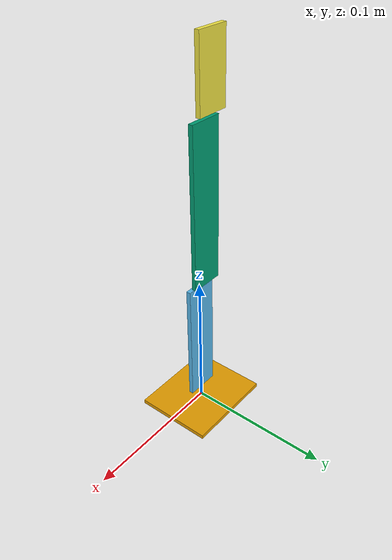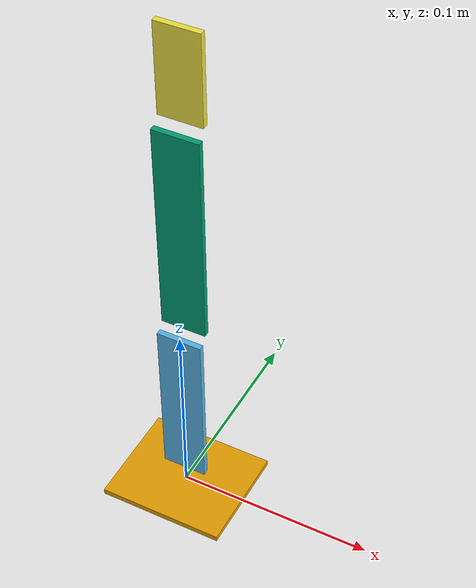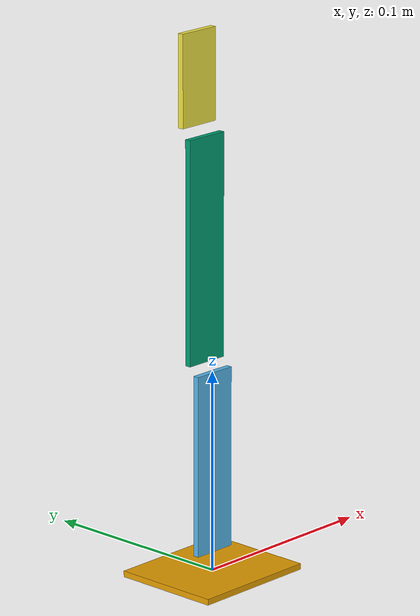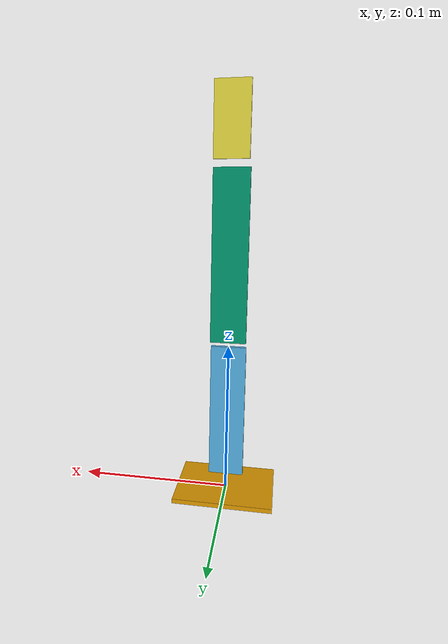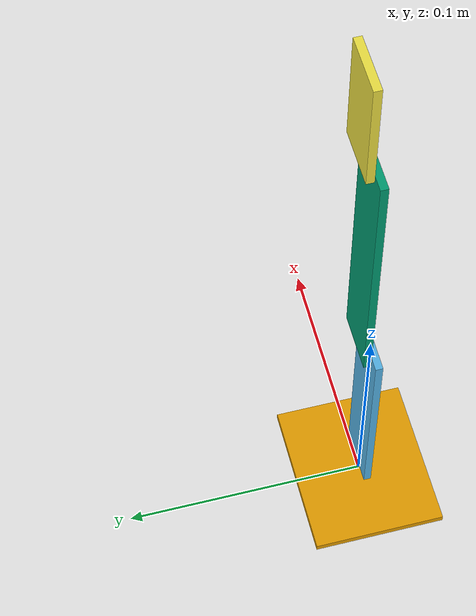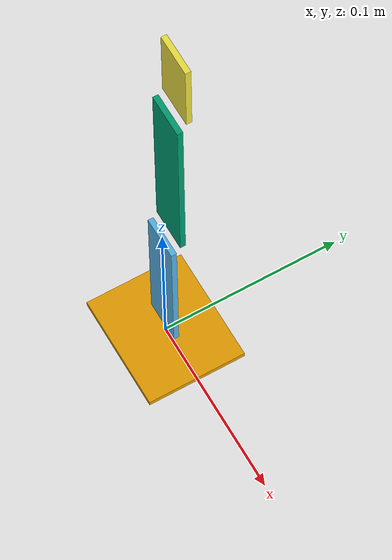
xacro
<?xml version="1.0"?>
<robot xmlns:xacro="http://ros.org/wiki/xacro" name="balsa_arm" >

  <!-- PR2 gripper -->
  <xacro:include filename="$(find balsa_arm_description)/urdf/gripper_v0/gripper.urdf.xacro" />
  <xacro:include filename="$(find balsa_arm_description)/urdf/balsa_arm_only.urdf.xacro" />

  <xacro:balsa_arm_only>
    <origin xyz="0.0 0.0 0.0" rpy="0 0 0" />
  </xacro:balsa_arm_only>

</robot>

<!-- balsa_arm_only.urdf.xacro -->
<robot xmlns:xacro="http://ros.org/wiki/xacro">
  <xacro:macro name="balsa_arm_only" params="*origin">
  <link name="base_link">
    <visual>
      <geometry>
        <box size="0.065 0.055 0.003"/>
      </geometry>
    </visual>
    <collision>
      <geometry>
        <box size="0.065 0.055 0.003"/>
      </geometry>
    </collision>
    <inertial>
      <mass value="0.01"/>
      <inertia ixx="0.0000125" ixy="0.0" ixz="0.0" iyy="0.0000125" iyz="0.0" izz="0.0000125"/>
    </inertial>
  </link>

  <link name="upper_arm">
    <visual>
      <geometry>
        <box size="0.090 0.003 0.023"/>
      </geometry>
      <origin rpy="0 1.57075 0" xyz="0 0 0.030"/>
    </visual>
    <collision>
      <geometry>
        <box size="0.090 0.003 0.023"/>
      </geometry>
    </collision>
    <inertial>
      <mass value="0.01"/>
      <inertia ixx="0.0000125" ixy="0.0" ixz="0.0" iyy="0.0000125" iyz="0.0" izz="0.0000125"/>
    </inertial>
  </link>

  <joint name="shoulder" type="revolute">
    <axis xyz="0 0 1"/>
    <limit lower="-0.2" upper="0.2" effort="2.5" velocity="1.0"/>
    <parent link="base_link"/>
    <child link="upper_arm"/>
    <origin xyz="0 0 0.025"/>
    <sensor name="force_torque" type="force_torque">
      <update_rate>30</update_rate>
      <always_on>true</always_on>
    </sensor>
  </joint>

  <link name="forearm">
    <visual>
      <geometry>
        <box size="0.110 0.003 0.023"/>
      </geometry>
      <origin rpy="0 1.57075 0" xyz="0 0.005 0.054"/>
    </visual>
    <collision>
      <geometry>
        <box size="0.110 0.003 0.023"/>
      </geometry>
    </collision>
    <inertial>
      <mass value="0.01"/>
      <inertia ixx="0.0000125" ixy="0.0" ixz="0.0" iyy="0.0000125" iyz="0.0" izz="0.0000125"/>
    </inertial>
  </link>

  <joint name="elbow" type="revolute">
    <axis xyz="0 1 0"/>
    <limit lower="-0.2" upper="0.2" effort="2.5" velocity="1.0"/>
    <parent link="upper_arm"/>
    <child link="forearm"/>
    <origin xyz="0 0 0.080"/>
  </joint>

  <link name="palm">
    <visual>
      <geometry>
        <box size="0.045 0.003 0.022"/>
      </geometry>
      <origin rpy="0 1.57075 0" xyz="0 0.01 0.068"/>
    </visual>
    <collision>
      <geometry>
        <box size="0.045 0.003 0.022"/>
      </geometry>
    </collision>
    <inertial>
      <mass value="0.01"/>
      <inertia ixx="0.0000125" ixy="0.0" ixz="0.0" iyy="0.0000125" iyz="0.0" izz="0.0000125"/>
    </inertial>
  </link>

  <joint name="wrist" type="revolute">
    <axis xyz="0 1 0"/>
    <limit lower="-0.2" upper="0.2" effort="2.5" velocity="1.0"/>
    <parent link="forearm"/>
    <child link="palm"/>
    <origin xyz="0 0 0.068"/>
  </joint>

  <transmission name="tran1">
    <type>transmission_interface/SimpleTransmission</type>
    <joint name="shoulder">
      <hardwareInterface>PositionJointInterface</hardwareInterface>
    </joint>
    <actuator name="motor1">
      <hardwareInterface>PositionJointInterface</hardwareInterface>
      <mechanicalReduction>1</mechanicalReduction>
    </actuator>
  </transmission>

  <transmission name="tran2">
    <type>transmission_interface/SimpleTransmission</type>
    <joint name="elbow">
      <hardwareInterface>PositionJointInterface</hardwareInterface>
    </joint>
    <actuator name="motor2">
      <hardwareInterface>PositionJointInterface</hardwareInterface>
      <mechanicalReduction>1</mechanicalReduction>
    </actuator>
  </transmission>

  <transmission name="tran3">
    <type>transmission_interface/SimpleTransmission</type>
    <joint name="wrist">
      <hardwareInterface>PositionJointInterface</hardwareInterface>
    </joint>
    <actuator name="motor3">
      <hardwareInterface>PositionJointInterface</hardwareInterface>
      <mechanicalReduction>1</mechanicalReduction>
    </actuator>
  </transmission>

  <gazebo>
    <plugin name="gazebo_ros_control" filename="libgazebo_ros_control.so">
      <robotNamespace>/balsa_arm</robotNamespace>
    </plugin>
  </gazebo>
  </xacro:macro>

</robot>
